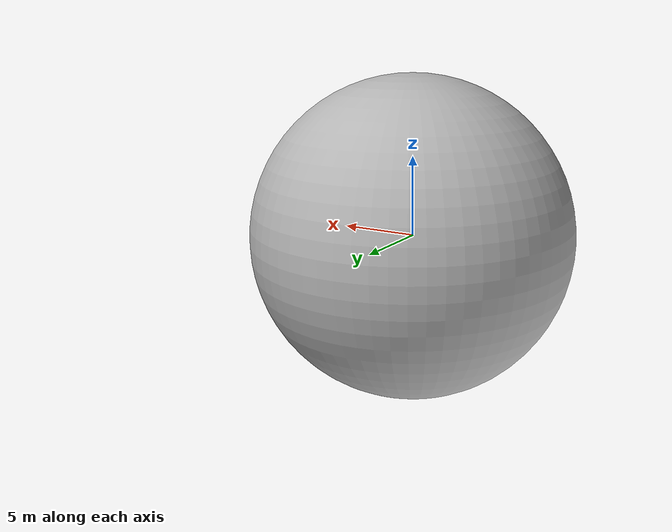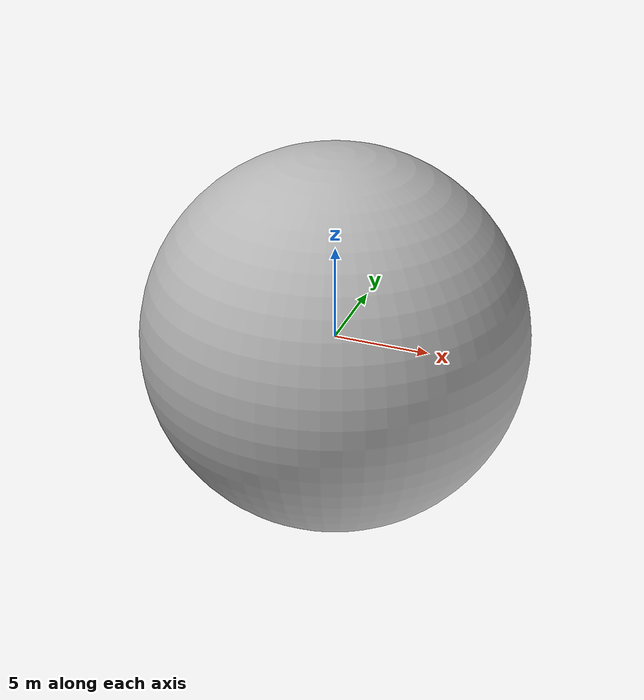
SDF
<?xml version="1.0" ?>
<sdf version="1.7">

  <world name="default">
    <!-- Required gz-sim systems: without these, the world simulates physics
         but nothing steps/publishes sensor data (lidar, camera, IMU) and
         GUI-side entity spawning/deletion won't work. -->
    <plugin filename="gz-sim-physics-system" name="gz::sim::systems::Physics">
    </plugin>
    <plugin filename="gz-sim-user-commands-system" name="gz::sim::systems::UserCommands">
    </plugin>
    <plugin filename="gz-sim-scene-broadcaster-system" name="gz::sim::systems::SceneBroadcaster">
    </plugin>
    <plugin filename="gz-sim-sensors-system" name="gz::sim::systems::Sensors">
      <render_engine>ogre2</render_engine>
    </plugin>
    <plugin filename="gz-sim-imu-system" name="gz::sim::systems::Imu">
    </plugin>
     <scene>
      <ambient>0.8 0.8 0.8 1.0</ambient>
      <background>0.5 0.5 0.5</background>
      <grid>false</grid>
    </scene>

    <model name="ground_plane">
      <static>true</static>
      <link name="link">
        <collision name="collision">
          <geometry>
            <plane>
              <normal>0 0 1</normal>
              <size>100 100</size>
            </plane>
          </geometry>
        </collision>
      </link>
    </model>

    <include>
      <uri>model://limo_stage1</uri>
      <pose>0.1 -0.5 0 0 0 3.141592</pose>
    </include>

    <include>
      <uri>model://background</uri>
      <pose>0 0 0 0 0 0</pose>
    </include>

    <include>
      <uri>model://traffic_light</uri>
      <name>traffic_light</name>
      <pose>-0.3257 -0.5701 0 0 0 0</pose>
    </include>

    <light name='user_point_light_1' type='point'>
      <pose>0.0 0.0 2.0 0 0 0</pose>
      <diffuse>0.5 0.5 0.5 1</diffuse>
      <specular>0.1 0.1 0.1 1</specular>
      <attenuation>
        <range>100</range>
        <constant>0.05</constant>
        <linear>0.0</linear>
        <quadratic>0.001</quadratic>
      </attenuation>
      <cast_shadows>0</cast_shadows>
      <direction>0 0 -1</direction>
    </light>

  </world>
</sdf>

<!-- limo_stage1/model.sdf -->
<sdf version='1.6'>
  <model name='limo_stage1'>
    <link name='link_1'>
         <visual name='visual'>
        <pose frame=''>0 0 0 0 -0 0</pose>
        <geometry>
          <mesh>
            <uri>model://limo_stage1/meshes/limo_stage.dae</uri>
            <scale>1.2 1.2 1.2</scale>
          </mesh>
        </geometry>
        <cast_shadows>1</cast_shadows>
        <transparency>0</transparency>
      </visual>
      <collision name='collision'>
        <laser_retro>0</laser_retro>
        <max_contacts>10</max_contacts>
        <pose frame=''>0 0 0 0 -0 0</pose>
        <geometry>
          <mesh>
            <uri>model://limo_stage1/meshes/limo_stage.stl</uri>
            <scale>1.2 1.2 1.2</scale>
          </mesh>
        </geometry>
     </collision>
    </link>

    <static>1</static>
    <allow_auto_disable>1</allow_auto_disable>
  </model>
</sdf>

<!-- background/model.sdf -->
<sdf version='1.6'>
  <model name='background'>
    <link name='link_1'>
         <visual name='visual'>
        <pose frame=''>0 0 0 0 -0 0</pose>
        <geometry>
          <mesh>
            <uri>model://background/meshes/sphere.dae</uri>
            <scale>0.02 0.02 0.02</scale>
          </mesh>
        </geometry>
        <cast_shadows>0</cast_shadows>
        <transparency>0</transparency>
      </visual>
    </link>

    <static>1</static>
    <allow_auto_disable>1</allow_auto_disable>
  </model>
</sdf>

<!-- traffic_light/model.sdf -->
<sdf version="1.7">
  <model name="traffic_light">
    <static>true</static>
    <link name="lamp_link">

      <visual name="lamp_red_n_dome">
        <pose>0.0000 0.0387 0.1604 -1.5708 0 0</pose>
        <geometry>
          <mesh>
            <uri>model://traffic_light/meshes/lens_dome.stl</uri>
          </mesh>
        </geometry>
        <material>
          <ambient>0.15 0.02 0.02 1</ambient>
          <diffuse>0.15 0.02 0.02 1</diffuse>
          <emissive>0.05 0 0 1</emissive>
        </material>
      </visual>

      <visual name="lamp_red_s_dome">
        <pose>0.0000 -0.0387 0.1604 1.5708 0 0</pose>
        <geometry>
          <mesh>
            <uri>model://traffic_light/meshes/lens_dome.stl</uri>
          </mesh>
        </geometry>
        <material>
          <ambient>0.15 0.02 0.02 1</ambient>
          <diffuse>0.15 0.02 0.02 1</diffuse>
          <emissive>0.05 0 0 1</emissive>
        </material>
      </visual>

      <visual name="lamp_red_e_dome">
        <pose>0.0387 0.0000 0.1604 0 1.5708 0</pose>
        <geometry>
          <mesh>
            <uri>model://traffic_light/meshes/lens_dome.stl</uri>
          </mesh>
        </geometry>
        <material>
          <ambient>0.15 0.02 0.02 1</ambient>
          <diffuse>0.15 0.02 0.02 1</diffuse>
          <emissive>0.05 0 0 1</emissive>
        </material>
      </visual>

      <visual name="lamp_red_w_dome">
        <pose>-0.0387 0.0000 0.1604 0 -1.5708 0</pose>
        <geometry>
          <mesh>
            <uri>model://traffic_light/meshes/lens_dome.stl</uri>
          </mesh>
        </geometry>
        <material>
          <ambient>0.15 0.02 0.02 1</ambient>
          <diffuse>0.15 0.02 0.02 1</diffuse>
          <emissive>0.05 0 0 1</emissive>
        </material>
      </visual>

      <visual name="lamp_yellow_n_dome">
        <pose>0.0000 0.0387 0.1287 -1.5708 0 0</pose>
        <geometry>
          <mesh>
            <uri>model://traffic_light/meshes/lens_dome.stl</uri>
          </mesh>
        </geometry>
        <material>
          <ambient>0.15 0.13 0.02 1</ambient>
          <diffuse>0.15 0.13 0.02 1</diffuse>
          <emissive>0.05 0.04 0 1</emissive>
        </material>
      </visual>

      <visual name="lamp_yellow_s_dome">
        <pose>0.0000 -0.0387 0.1287 1.5708 0 0</pose>
        <geometry>
          <mesh>
            <uri>model://traffic_light/meshes/lens_dome.stl</uri>
          </mesh>
        </geometry>
        <material>
          <ambient>0.15 0.13 0.02 1</ambient>
          <diffuse>0.15 0.13 0.02 1</diffuse>
          <emissive>0.05 0.04 0 1</emissive>
        </material>
      </visual>

      <visual name="lamp_yellow_e_dome">
        <pose>0.0387 0.0000 0.1287 0 1.5708 0</pose>
        <geometry>
          <mesh>
            <uri>model://traffic_light/meshes/lens_dome.stl</uri>
          </mesh>
        </geometry>
        <material>
          <ambient>0.15 0.13 0.02 1</ambient>
          <diffuse>0.15 0.13 0.02 1</diffuse>
          <emissive>0.05 0.04 0 1</emissive>
        </material>
      </visual>

      <visual name="lamp_yellow_w_dome">
        <pose>-0.0387 0.0000 0.1287 0 -1.5708 0</pose>
        <geometry>
          <mesh>
            <uri>model://traffic_light/meshes/lens_dome.stl</uri>
          </mesh>
        </geometry>
        <material>
          <ambient>0.15 0.13 0.02 1</ambient>
          <diffuse>0.15 0.13 0.02 1</diffuse>
          <emissive>0.05 0.04 0 1</emissive>
        </material>
      </visual>

      <visual name="lamp_green_n_dome">
        <pose>0.0000 0.0387 0.0974 -1.5708 0 0</pose>
        <geometry>
          <mesh>
            <uri>model://traffic_light/meshes/lens_dome.stl</uri>
          </mesh>
        </geometry>
        <material>
          <ambient>0.02 0.15 0.02 1</ambient>
          <diffuse>0.02 0.15 0.02 1</diffuse>
          <emissive>0 0.05 0 1</emissive>
        </material>
      </visual>

      <visual name="lamp_green_s_dome">
        <pose>0.0000 -0.0387 0.0974 1.5708 0 0</pose>
        <geometry>
          <mesh>
            <uri>model://traffic_light/meshes/lens_dome.stl</uri>
          </mesh>
        </geometry>
        <material>
          <ambient>0.02 0.15 0.02 1</ambient>
          <diffuse>0.02 0.15 0.02 1</diffuse>
          <emissive>0 0.05 0 1</emissive>
        </material>
      </visual>

      <visual name="lamp_green_e_dome">
        <pose>0.0387 0.0000 0.0974 0 1.5708 0</pose>
        <geometry>
          <mesh>
            <uri>model://traffic_light/meshes/lens_dome.stl</uri>
          </mesh>
        </geometry>
        <material>
          <ambient>0.02 0.15 0.02 1</ambient>
          <diffuse>0.02 0.15 0.02 1</diffuse>
          <emissive>0 0.05 0 1</emissive>
        </material>
      </visual>

      <visual name="lamp_green_w_dome">
        <pose>-0.0387 0.0000 0.0974 0 -1.5708 0</pose>
        <geometry>
          <mesh>
            <uri>model://traffic_light/meshes/lens_dome.stl</uri>
          </mesh>
        </geometry>
        <material>
          <ambient>0.02 0.15 0.02 1</ambient>
          <diffuse>0.02 0.15 0.02 1</diffuse>
          <emissive>0 0.05 0 1</emissive>
        </material>
      </visual>

    </link>
  </model>
</sdf>
